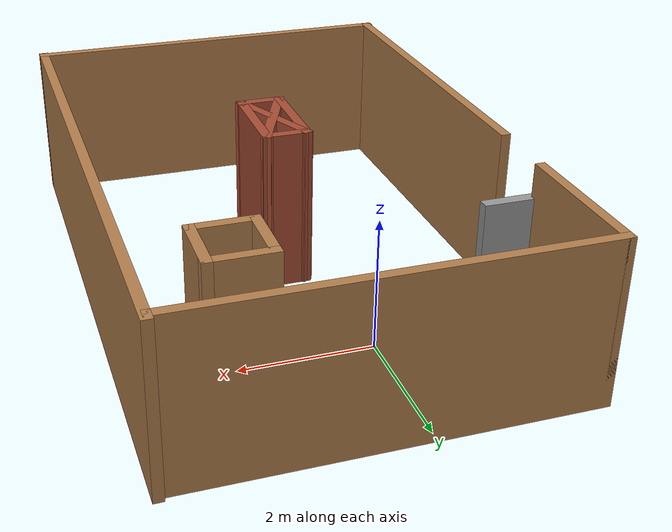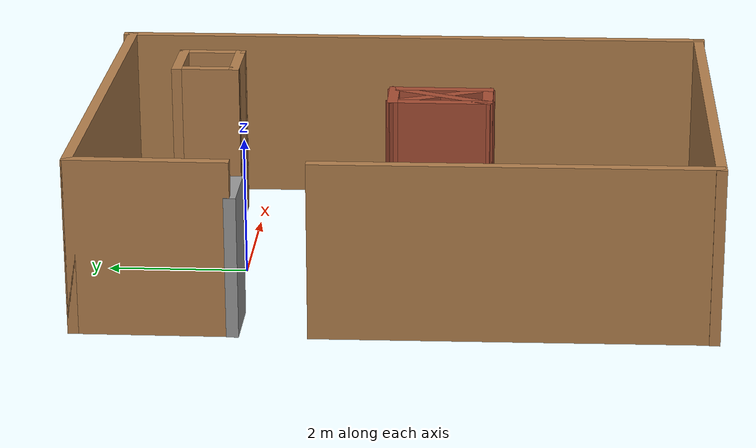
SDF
<?xml version='1.0'?>
<sdf version='1.7'>
  <model name='world'>
    <pose>0.624885 -2.22233 0 0 -0 0</pose>
    <link name='Door_0'>
      <collision name='Door_0_Collision'>
        <geometry>
          <box>
            <size>0.9 0.17 2</size>
          </box>
        </geometry>
        <pose>0 0 1 0 -0 0</pose>
      </collision>
      <visual name='Door_0_Visual'>
        <pose>0 0 1 0 -0 0</pose>
        <geometry>
          <box>
            <size>0.9 0.17 2</size>
          </box>
        </geometry>
        <material>
          <script>
            <uri>file://media/materials/scripts/gazebo.material</uri>
            <name>Gazebo/Grey</name>
          </script>
        </material>
      </visual>
      <pose>-2.61688 2.15728 0 0 -0 0</pose>
    </link>
    <link name='Wall_0'>
      <collision name='Wall_0_Collision'>
        <geometry>
          <box>
            <size>5.54612 0.15 2.5</size>
          </box>
        </geometry>
        <pose>0 0 1.25 0 -0 0</pose>
      </collision>
      <visual name='Wall_0_Visual'>
        <pose>0 0 1.25 0 -0 0</pose>
        <geometry>
          <box>
            <size>5.54612 0.15 2.5</size>
          </box>
        </geometry>
        <material>
          <script>
            <uri>file://media/materials/scripts/gazebo.material</uri>
            <name>Gazebo/Wood</name>
          </script>
          <ambient>1 1 1 1</ambient>
        </material>
        <meta>
          <layer>0</layer>
        </meta>
      </visual>
      <pose>-2.96517 -1.63523 0 0 -0 1.58198</pose>
    </link>
    <link name='Wall_17'>
      <collision name='Wall_17_Collision'>
        <geometry>
          <box>
            <size>0.75 0.15 2.5</size>
          </box>
        </geometry>
        <pose>0 0 1.25 0 -0 0</pose>
      </collision>
      <visual name='Wall_17_Visual'>
        <pose>0 0 1.25 0 -0 0</pose>
        <geometry>
          <box>
            <size>0.75 0.15 2.5</size>
          </box>
        </geometry>
        <material>
          <script>
            <uri>file://media/materials/scripts/gazebo.material</uri>
            <name>Gazebo/Bricks</name>
          </script>
          <ambient>1 1 1 1</ambient>
        </material>
        <meta>
          <layer>0</layer>
        </meta>
      </visual>
      <pose>0.024246 0.13738 0 0 -0 0</pose>
    </link>
    <link name='Wall_18'>
      <collision name='Wall_18_Collision'>
        <geometry>
          <box>
            <size>1.5 0.15 2.5</size>
          </box>
        </geometry>
        <pose>0 0 1.25 0 -0 0</pose>
      </collision>
      <visual name='Wall_18_Visual'>
        <pose>0 0 1.25 0 -0 0</pose>
        <geometry>
          <box>
            <size>1.5 0.15 2.5</size>
          </box>
        </geometry>
        <material>
          <script>
            <uri>file://media/materials/scripts/gazebo.material</uri>
            <name>Gazebo/Bricks</name>
          </script>
          <ambient>1 1 1 1</ambient>
        </material>
        <meta>
          <layer>0</layer>
        </meta>
      </visual>
      <pose>0.324246 -0.53762 0 0 -0 -1.5708</pose>
    </link>
    <link name='Wall_19'>
      <collision name='Wall_19_Collision'>
        <geometry>
          <box>
            <size>0.75 0.15 2.5</size>
          </box>
        </geometry>
        <pose>0 0 1.25 0 -0 0</pose>
      </collision>
      <visual name='Wall_19_Visual'>
        <pose>0 0 1.25 0 -0 0</pose>
        <geometry>
          <box>
            <size>0.75 0.15 2.5</size>
          </box>
        </geometry>
        <material>
          <script>
            <uri>file://media/materials/scripts/gazebo.material</uri>
            <name>Gazebo/Bricks</name>
          </script>
          <ambient>1 1 1 1</ambient>
        </material>
        <meta>
          <layer>0</layer>
        </meta>
      </visual>
      <pose>0.024246 -1.21262 0 0 -0 3.14159</pose>
    </link>
    <link name='Wall_2'>
      <collision name='Wall_2_Collision'>
        <geometry>
          <box>
            <size>6.10087 0.15 2.5</size>
          </box>
        </geometry>
        <pose>0 0 1.25 0 -0 0</pose>
      </collision>
      <visual name='Wall_2_Visual'>
        <pose>0 0 1.25 0 -0 0</pose>
        <geometry>
          <box>
            <size>6.10087 0.15 2.5</size>
          </box>
        </geometry>
        <material>
          <script>
            <uri>file://media/materials/scripts/gazebo.material</uri>
            <name>Gazebo/Wood</name>
          </script>
          <ambient>1 1 1 1</ambient>
        </material>
        <meta>
          <layer>0</layer>
        </meta>
      </visual>
      <pose>0.020172 -4.36329 0 0 -0 -0.00338</pose>
    </link>
    <link name='Wall_22'>
      <collision name='Wall_22_Collision'>
        <geometry>
          <box>
            <size>1.62733 0.15 2.5</size>
          </box>
        </geometry>
        <pose>0 0 1.25 0 -0 0</pose>
      </collision>
      <visual name='Wall_22_Visual'>
        <pose>0 0 1.25 0 -0 0</pose>
        <geometry>
          <box>
            <size>1.62733 0.15 2.5</size>
          </box>
        </geometry>
        <material>
          <script>
            <uri>file://media/materials/scripts/gazebo.material</uri>
            <name>Gazebo/Bricks</name>
          </script>
          <ambient>1 1 1 1</ambient>
        </material>
        <meta>
          <layer>0</layer>
        </meta>
      </visual>
      <pose>0.024246 -0.53762 0 0 -0 -1.15257</pose>
    </link>
    <link name='Wall_24'>
      <collision name='Wall_24_Collision'>
        <geometry>
          <box>
            <size>1.62733 0.15 2.5</size>
          </box>
        </geometry>
        <pose>0 0 1.25 0 -0 0</pose>
      </collision>
      <visual name='Wall_24_Visual'>
        <pose>0 0 1.25 0 -0 0</pose>
        <geometry>
          <box>
            <size>1.62733 0.15 2.5</size>
          </box>
        </geometry>
        <material>
          <script>
            <uri>file://media/materials/scripts/gazebo.material</uri>
            <name>Gazebo/Bricks</name>
          </script>
          <ambient>1 1 1 1</ambient>
        </material>
        <meta>
          <layer>0</layer>
        </meta>
      </visual>
      <pose>0.024246 -0.53762 0 0 -0 -1.98902</pose>
    </link>
    <link name='Wall_26'>
      <collision name='Wall_26_Collision'>
        <geometry>
          <box>
            <size>1 0.15 2.5</size>
          </box>
        </geometry>
        <pose>0 0 1.25 0 -0 0</pose>
      </collision>
      <visual name='Wall_26_Visual'>
        <pose>0 0 1.25 0 -0 0</pose>
        <geometry>
          <box>
            <size>1 0.15 2.5</size>
          </box>
        </geometry>
        <material>
          <script>
            <uri>file://media/materials/scripts/gazebo.material</uri>
            <name>Gazebo/Wood</name>
          </script>
          <ambient>1 1 1 1</ambient>
        </material>
        <meta>
          <layer>0</layer>
        </meta>
      </visual>
      <pose>1.17242 2.9885 0 0 -0 -1.5708</pose>
    </link>
    <link name='Wall_27'>
      <collision name='Wall_27_Collision'>
        <geometry>
          <box>
            <size>1 0.15 2.5</size>
          </box>
        </geometry>
        <pose>0 0 1.25 0 -0 0</pose>
      </collision>
      <visual name='Wall_27_Visual'>
        <pose>0 0 1.25 0 -0 0</pose>
        <geometry>
          <box>
            <size>1 0.15 2.5</size>
          </box>
        </geometry>
        <material>
          <script>
            <uri>file://media/materials/scripts/gazebo.material</uri>
            <name>Gazebo/Wood</name>
          </script>
          <ambient>1 1 1 1</ambient>
        </material>
        <meta>
          <layer>0</layer>
        </meta>
      </visual>
      <pose>1.59742 2.5635 0 0 -0 0</pose>
    </link>
    <link name='Wall_28'>
      <collision name='Wall_28_Collision'>
        <geometry>
          <box>
            <size>1 0.15 2.5</size>
          </box>
        </geometry>
        <pose>0 0 1.25 0 -0 0</pose>
      </collision>
      <visual name='Wall_28_Visual'>
        <pose>0 0 1.25 0 -0 0</pose>
        <geometry>
          <box>
            <size>1 0.15 2.5</size>
          </box>
        </geometry>
        <material>
          <script>
            <uri>file://media/materials/scripts/gazebo.material</uri>
            <name>Gazebo/Wood</name>
          </script>
          <ambient>1 1 1 1</ambient>
        </material>
        <meta>
          <layer>0</layer>
        </meta>
      </visual>
      <pose>2.02242 2.9885 0 0 -0 1.5708</pose>
    </link>
    <link name='Wall_29'>
      <collision name='Wall_29_Collision'>
        <geometry>
          <box>
            <size>1 0.15 2.5</size>
          </box>
        </geometry>
        <pose>0 0 1.25 0 -0 0</pose>
      </collision>
      <visual name='Wall_29_Visual'>
        <pose>0 0 1.25 0 -0 0</pose>
        <geometry>
          <box>
            <size>1 0.15 2.5</size>
          </box>
        </geometry>
        <material>
          <script>
            <uri>file://media/materials/scripts/gazebo.material</uri>
            <name>Gazebo/Wood</name>
          </script>
          <ambient>1 1 1 1</ambient>
        </material>
        <meta>
          <layer>0</layer>
        </meta>
      </visual>
      <pose>1.59742 3.4135 0 0 -0 3.14159</pose>
    </link>
    <link name='Wall_31'>
      <collision name='Wall_31_Collision'>
        <geometry>
          <box>
            <size>1.5 0.15 2.5</size>
          </box>
        </geometry>
        <pose>0 0 1.25 0 -0 0</pose>
      </collision>
      <visual name='Wall_31_Visual'>
        <pose>0 0 1.25 0 -0 0</pose>
        <geometry>
          <box>
            <size>1.5 0.15 2.5</size>
          </box>
        </geometry>
        <material>
          <script>
            <uri>file://media/materials/scripts/gazebo.material</uri>
            <name>Gazebo/Bricks</name>
          </script>
          <ambient>1 1 1 1</ambient>
        </material>
        <meta>
          <layer>0</layer>
        </meta>
      </visual>
      <pose>-0.275754 -0.53762 0 0 -0 -1.5708</pose>
    </link>
    <link name='Wall_4'>
      <collision name='Wall_4_Collision'>
        <geometry>
          <box>
            <size>6 0.15 2.5</size>
          </box>
        </geometry>
        <pose>0 0 1.25 0 -0 0</pose>
      </collision>
      <visual name='Wall_4_Visual'>
        <pose>0 0 1.25 0 -0 0</pose>
        <geometry>
          <box>
            <size>6 0.15 2.5</size>
          </box>
        </geometry>
        <material>
          <script>
            <uri>file://media/materials/scripts/gazebo.material</uri>
            <name>Gazebo/Wood</name>
          </script>
          <ambient>1 1 1 1</ambient>
        </material>
        <meta>
          <layer>0</layer>
        </meta>
      </visual>
      <pose>-0.054187 4.33312 0 0 -0 0</pose>
    </link>
    <link name='Wall_5'>
      <collision name='Wall_5_Collision'>
        <geometry>
          <box>
            <size>8.93732 0.15 2.5</size>
          </box>
        </geometry>
        <pose>0 0 1.25 0 -0 0</pose>
      </collision>
      <visual name='Wall_5_Visual'>
        <pose>0 0 1.25 0 -0 0</pose>
        <geometry>
          <box>
            <size>8.93732 0.15 2.5</size>
          </box>
        </geometry>
        <material>
          <script>
            <uri>file://media/materials/scripts/gazebo.material</uri>
            <name>Gazebo/Wood</name>
          </script>
          <ambient>1 1 1 1</ambient>
        </material>
        <meta>
          <layer>0</layer>
        </meta>
      </visual>
      <pose>2.95325 0 0 0 -0 -1.56119</pose>
    </link>
    <link name='Wall_8'>
      <collision name='Wall_8_Collision'>
        <geometry>
          <box>
            <size>2.25 0.15 2.5</size>
          </box>
        </geometry>
        <pose>0 0 1.25 0 -0 0</pose>
      </collision>
      <visual name='Wall_8_Visual'>
        <pose>0 0 1.25 0 -0 0</pose>
        <geometry>
          <box>
            <size>2.25 0.15 2.5</size>
          </box>
        </geometry>
        <material>
          <script>
            <uri>file://media/materials/scripts/gazebo.material</uri>
            <name>Gazebo/Wood</name>
          </script>
          <ambient>1 1 1 1</ambient>
        </material>
        <meta>
          <layer>0</layer>
        </meta>
      </visual>
      <pose>-2.97919 3.28312 0 0 -0 -1.5708</pose>
    </link>
    <static>1</static>
  </model>
</sdf>
